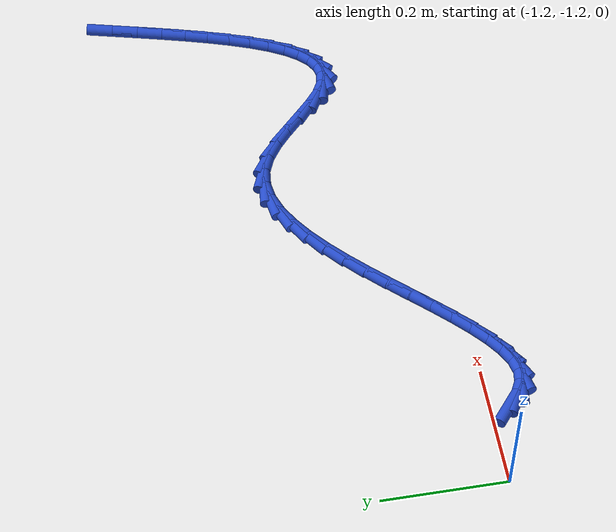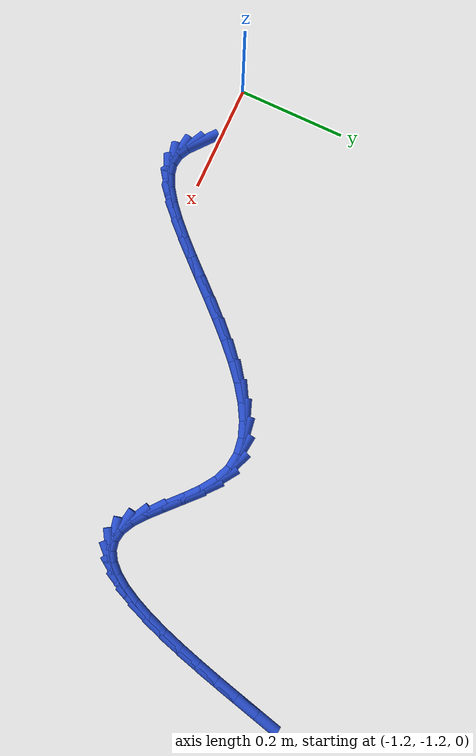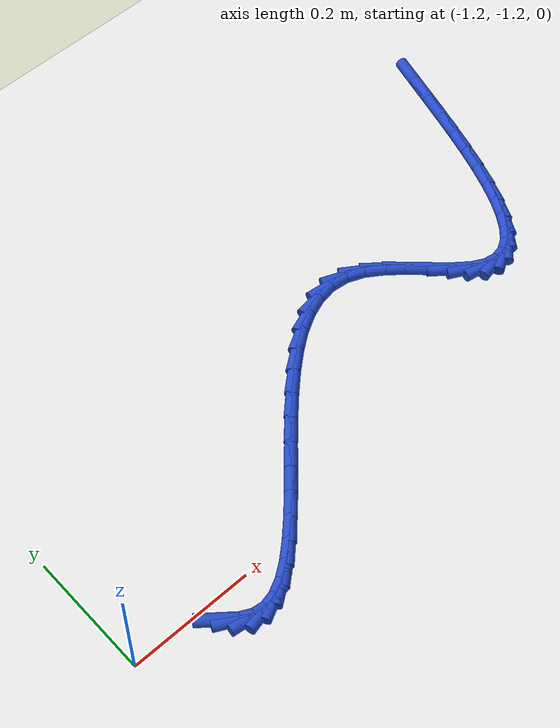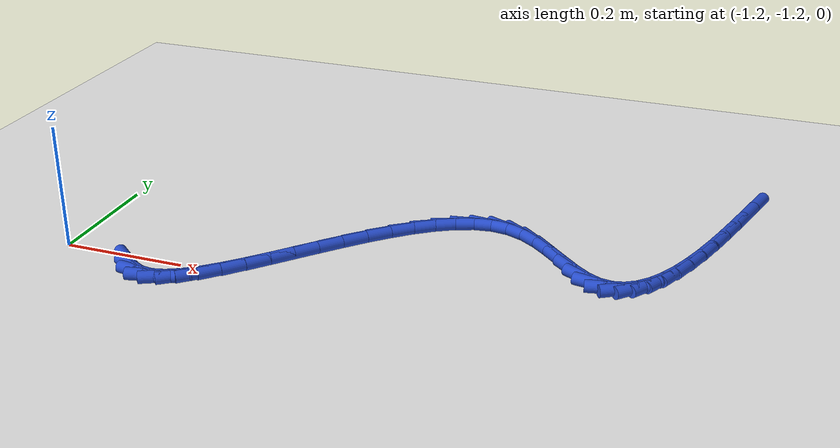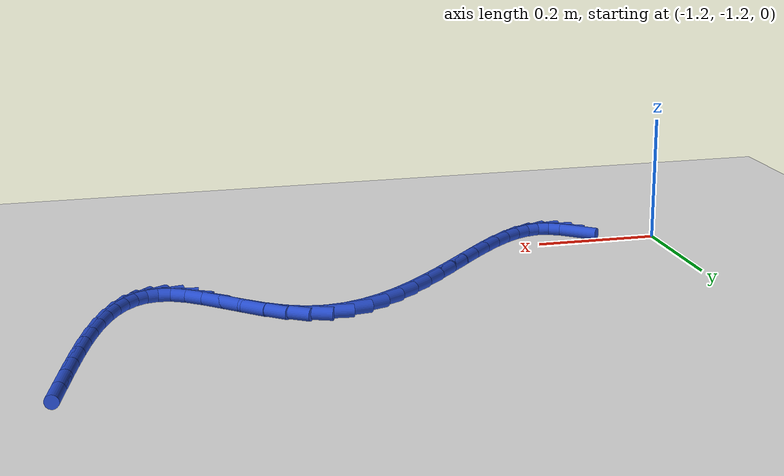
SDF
<sdf version="1.6">
 <world name="default">
  <model name="ground_plane">
   <static>1</static>
   <link name="link">
    <collision name="collision">
     <geometry><plane><normal>0 0 1</normal><size>100 100</size></plane></geometry>
     <surface><friction><ode><mu>100</mu><mu2>50</mu2></ode></friction></surface>
    </collision>
    <visual name="visual">
     <cast_shadows>0</cast_shadows>
     <geometry><plane><normal>0 0 1</normal><size>100 100</size></plane></geometry>
     <material>
      <script><uri>file://media/materials/scripts/gazebo.material</uri><name>Gazebo/WhiteGlow</name></script>
     </material>
    </visual>
   </link>
  </model>
  <model name="line">
   <link name="link_179">
    <pose>-1.0712496424174915 -1.2308870266779137 0.01 0 1.57 -0.6922812080934702</pose>
    <collision name="collision">
     <geometry><cylinder><radius>0.01</radius><length>0.08</length></cylinder></geometry>
    </collision>
    <visual name="visual">
     <material>
      <script><name>Gazebo/Blue</name><uri>file://media/materials/scripts/gazebo.material</uri></script>
     </material>
     <geometry><cylinder><radius>0.01</radius><length>0.08</length></cylinder></geometry>
    </visual>
   </link>
   <link name="link_180">
    <pose>-1.0529584683432565 -1.246053674354585 0.01 0 1.57 -0.47155529323171735</pose>
    <collision name="collision">
     <geometry><cylinder><radius>0.01</radius><length>0.08</length></cylinder></geometry>
    </collision>
    <visual name="visual">
     <material>
      <script><name>Gazebo/Blue</name><uri>file://media/materials/scripts/gazebo.material</uri></script>
     </material>
     <geometry><cylinder><radius>0.01</radius><length>0.08</length></cylinder></geometry>
    </visual>
   </link>
   <link name="link_181">
    <pose>-1.0343918881669434 -1.255521220117801 0.01 0 1.57 -0.13213396810318156</pose>
    <collision name="collision">
     <geometry><cylinder><radius>0.01</radius><length>0.08</length></cylinder></geometry>
    </collision>
    <visual name="visual">
     <material>
      <script><name>Gazebo/Blue</name><uri>file://media/materials/scripts/gazebo.material</uri></script>
     </material>
     <geometry><cylinder><radius>0.01</radius><length>0.08</length></cylinder></geometry>
    </visual>
   </link>
   <link name="link_182">
    <pose>-1.0148479642855506 -1.2581187711727826 0.01 0 1.57 0.2213241829103349</pose>
    <collision name="collision">
     <geometry><cylinder><radius>0.01</radius><length>0.08</length></cylinder></geometry>
    </collision>
    <visual name="visual">
     <material>
      <script><name>Gazebo/Blue</name><uri>file://media/materials/scripts/gazebo.material</uri></script>
     </material>
     <geometry><cylinder><radius>0.01</radius><length>0.08</length></cylinder></geometry>
    </visual>
   </link>
   <link name="link_183">
    <pose>-0.9939082696893847 -1.2534071255980728 0.01 0 1.57 0.4663655021589586</pose>
    <collision name="collision">
     <geometry><cylinder><radius>0.01</radius><length>0.08</length></cylinder></geometry>
    </collision>
    <visual name="visual">
     <material>
      <script><name>Gazebo/Blue</name><uri>file://media/materials/scripts/gazebo.material</uri></script>
     </material>
     <geometry><cylinder><radius>0.01</radius><length>0.08</length></cylinder></geometry>
    </visual>
   </link>
   <link name="link_184">
    <pose>-0.9716384818930729 -1.2421964699273094 0.01 0 1.57 0.6202769035921657</pose>
    <collision name="collision">
     <geometry><cylinder><radius>0.01</radius><length>0.08</length></cylinder></geometry>
    </collision>
    <visual name="visual">
     <material>
      <script><name>Gazebo/Blue</name><uri>file://media/materials/scripts/gazebo.material</uri></script>
     </material>
     <geometry><cylinder><radius>0.01</radius><length>0.08</length></cylinder></geometry>
    </visual>
   </link>
   <link name="link_185">
    <pose>-0.9481516181207548 -1.2254191661408826 0.01 0 1.57 0.7163957355869561</pose>
    <collision name="collision">
     <geometry><cylinder><radius>0.01</radius><length>0.08</length></cylinder></geometry>
    </collision>
    <visual name="visual">
     <material>
      <script><name>Gazebo/Blue</name><uri>file://media/materials/scripts/gazebo.material</uri></script>
     </material>
     <geometry><cylinder><radius>0.01</radius><length>0.08</length></cylinder></geometry>
    </visual>
   </link>
   <link name="link_186">
    <pose>-0.9235606955965721 -1.2040075762191857 0.01 0 1.57 0.7761579577569756</pose>
    <collision name="collision">
     <geometry><cylinder><radius>0.01</radius><length>0.08</length></cylinder></geometry>
    </collision>
    <visual name="visual">
     <material>
      <script><name>Gazebo/Blue</name><uri>file://media/materials/scripts/gazebo.material</uri></script>
     </material>
     <geometry><cylinder><radius>0.01</radius><length>0.08</length></cylinder></geometry>
    </visual>
   </link>
   <link name="link_187">
    <pose>-0.8979787315446642 -1.178894062142608 0.01 0 1.57 0.8115792913565798</pose>
    <collision name="collision">
     <geometry><cylinder><radius>0.01</radius><length>0.08</length></cylinder></geometry>
    </collision>
    <visual name="visual">
     <material>
      <script><name>Gazebo/Blue</name><uri>file://media/materials/scripts/gazebo.material</uri></script>
     </material>
     <geometry><cylinder><radius>0.01</radius><length>0.08</length></cylinder></geometry>
    </visual>
   </link>
   <link name="link_188">
    <pose>-0.8715187431891718 -1.1510109858915414 0.01 0 1.57 0.8291890823489896</pose>
    <collision name="collision">
     <geometry><cylinder><radius>0.01</radius><length>0.08</length></cylinder></geometry>
    </collision>
    <visual name="visual">
     <material>
      <script><name>Gazebo/Blue</name><uri>file://media/materials/scripts/gazebo.material</uri></script>
     </material>
     <geometry><cylinder><radius>0.01</radius><length>0.08</length></cylinder></geometry>
    </visual>
   </link>
   <link name="link_189">
    <pose>-0.8442937477542353 -1.1212907094463767 0.01 0 1.57 0.832338541023532</pose>
    <collision name="collision">
     <geometry><cylinder><radius>0.01</radius><length>0.08</length></cylinder></geometry>
    </collision>
    <visual name="visual">
     <material>
      <script><name>Gazebo/Blue</name><uri>file://media/materials/scripts/gazebo.material</uri></script>
     </material>
     <geometry><cylinder><radius>0.01</radius><length>0.08</length></cylinder></geometry>
    </visual>
   </link>
   <link name="link_190">
    <pose>-0.8164167624639947 -1.0906655947875048 0.01 0 1.57 0.8223496767348666</pose>
    <collision name="collision">
     <geometry><cylinder><radius>0.01</radius><length>0.08</length></cylinder></geometry>
    </collision>
    <visual name="visual">
     <material>
      <script><name>Gazebo/Blue</name><uri>file://media/materials/scripts/gazebo.material</uri></script>
     </material>
     <geometry><cylinder><radius>0.01</radius><length>0.08</length></cylinder></geometry>
    </visual>
   </link>
   <link name="link_191">
    <pose>-0.7880008045425902 -1.0600680038953165 0.01 0 1.57 0.7990053435024614</pose>
    <collision name="collision">
     <geometry><cylinder><radius>0.01</radius><length>0.08</length></cylinder></geometry>
    </collision>
    <visual name="visual">
     <material>
      <script><name>Gazebo/Blue</name><uri>file://media/materials/scripts/gazebo.material</uri></script>
     </material>
     <geometry><cylinder><radius>0.01</radius><length>0.08</length></cylinder></geometry>
    </visual>
   </link>
   <link name="link_192">
    <pose>-0.7591588912141622 -1.0304302987502028 0.01 0 1.57 0.7606336939039765</pose>
    <collision name="collision">
     <geometry><cylinder><radius>0.01</radius><length>0.08</length></cylinder></geometry>
    </collision>
    <visual name="visual">
     <material>
      <script><name>Gazebo/Blue</name><uri>file://media/materials/scripts/gazebo.material</uri></script>
     </material>
     <geometry><cylinder><radius>0.01</radius><length>0.08</length></cylinder></geometry>
    </visual>
   </link>
   <link name="link_193">
    <pose>-0.7300040397028515 -1.0026848413325558 0.01 0 1.57 0.7038864186282696</pose>
    <collision name="collision">
     <geometry><cylinder><radius>0.01</radius><length>0.08</length></cylinder></geometry>
    </collision>
    <visual name="visual">
     <material>
      <script><name>Gazebo/Blue</name><uri>file://media/materials/scripts/gazebo.material</uri></script>
     </material>
     <geometry><cylinder><radius>0.01</radius><length>0.08</length></cylinder></geometry>
    </visual>
   </link>
   <link name="link_194">
    <pose>-0.700649267232799 -0.9777639936227662 0.01 0 1.57 0.623259152045787</pose>
    <collision name="collision">
     <geometry><cylinder><radius>0.01</radius><length>0.08</length></cylinder></geometry>
    </collision>
    <visual name="visual">
     <material>
      <script><name>Gazebo/Blue</name><uri>file://media/materials/scripts/gazebo.material</uri></script>
     </material>
     <geometry><cylinder><radius>0.01</radius><length>0.08</length></cylinder></geometry>
    </visual>
   </link>
   <link name="link_195">
    <pose>-0.6712075910281434 -0.9566001176012242 0.01 0 1.57 0.5105356089420913</pose>
    <collision name="collision">
     <geometry><cylinder><radius>0.01</radius><length>0.08</length></cylinder></geometry>
    </collision>
    <visual name="visual">
     <material>
      <script><name>Gazebo/Blue</name><uri>file://media/materials/scripts/gazebo.material</uri></script>
     </material>
     <geometry><cylinder><radius>0.01</radius><length>0.08</length></cylinder></geometry>
    </visual>
   </link>
   <link name="link_196">
    <pose>-0.6417920283130263 -0.9401255752483217 0.01 0 1.57 0.3549976912553543</pose>
    <collision name="collision">
     <geometry><cylinder><radius>0.01</radius><length>0.08</length></cylinder></geometry>
    </collision>
    <visual name="visual">
     <material>
      <script><name>Gazebo/Blue</name><uri>file://media/materials/scripts/gazebo.material</uri></script>
     </material>
     <geometry><cylinder><radius>0.01</radius><length>0.08</length></cylinder></geometry>
    </visual>
   </link>
   <link name="link_197">
    <pose>-0.6125155963115877 -0.9292727285444498 0.01 0 1.57 0.1470411059490394</pose>
    <collision name="collision">
     <geometry><cylinder><radius>0.01</radius><length>0.08</length></cylinder></geometry>
    </collision>
    <visual name="visual">
     <material>
      <script><name>Gazebo/Blue</name><uri>file://media/materials/scripts/gazebo.material</uri></script>
     </material>
     <geometry><cylinder><radius>0.01</radius><length>0.08</length></cylinder></geometry>
    </visual>
   </link>
   <link name="link_198">
    <pose>-0.5834913122479677 -0.9249739394699985 0.01 0 1.57 -0.11077041032198362</pose>
    <collision name="collision">
     <geometry><cylinder><radius>0.01</radius><length>0.08</length></cylinder></geometry>
    </collision>
    <visual name="visual">
     <material>
      <script><name>Gazebo/Blue</name><uri>file://media/materials/scripts/gazebo.material</uri></script>
     </material>
     <geometry><cylinder><radius>0.01</radius><length>0.08</length></cylinder></geometry>
    </visual>
   </link>
   <link name="link_199">
    <pose>-0.5548321933463067 -0.9281615700053599 0.01 0 1.57 -0.38733299385342346</pose>
    <collision name="collision">
     <geometry><cylinder><radius>0.01</radius><length>0.08</length></cylinder></geometry>
    </collision>
    <visual name="visual">
     <material>
      <script><name>Gazebo/Blue</name><uri>file://media/materials/scripts/gazebo.material</uri></script>
     </material>
     <geometry><cylinder><radius>0.01</radius><length>0.08</length></cylinder></geometry>
    </visual>
   </link>
   <link name="link_200">
    <pose>-0.5266533403735673 -0.9396568705041746 0.01 0 1.57 -0.5951852601669205</pose>
    <collision name="collision">
     <geometry><cylinder><radius>0.01</radius><length>0.08</length></cylinder></geometry>
    </collision>
    <visual name="visual">
     <material>
      <script><name>Gazebo/Blue</name><uri>file://media/materials/scripts/gazebo.material</uri></script>
     </material>
     <geometry><cylinder><radius>0.01</radius><length>0.08</length></cylinder></geometry>
    </visual>
   </link>
   <link name="link_201">
    <pose>-0.49910684610303996 -0.9583083735268668 0.01 0 1.57 -0.7097005970437553</pose>
    <collision name="collision">
     <geometry><cylinder><radius>0.01</radius><length>0.08</length></cylinder></geometry>
    </collision>
    <visual name="visual">
     <material>
      <script><name>Gazebo/Blue</name><uri>file://media/materials/scripts/gazebo.material</uri></script>
     </material>
     <geometry><cylinder><radius>0.01</radius><length>0.08</length></cylinder></geometry>
    </visual>
   </link>
   <link name="link_202">
    <pose>-0.47237658240053393 -0.9812698892466057 0.01 0 1.57 -0.7582807236363939</pose>
    <collision name="collision">
     <geometry><cylinder><radius>0.01</radius><length>0.08</length></cylinder></geometry>
    </collision>
    <visual name="visual">
     <material>
      <script><name>Gazebo/Blue</name><uri>file://media/materials/scripts/gazebo.material</uri></script>
     </material>
     <geometry><cylinder><radius>0.01</radius><length>0.08</length></cylinder></geometry>
    </visual>
   </link>
   <link name="link_203">
    <pose>-0.44664745454572063 -1.0056401177164893 0.01 0 1.57 -0.7502919708428869</pose>
    <collision name="collision">
     <geometry><cylinder><radius>0.01</radius><length>0.08</length></cylinder></geometry>
    </collision>
    <visual name="visual">
     <material>
      <script><name>Gazebo/Blue</name><uri>file://media/materials/scripts/gazebo.material</uri></script>
     </material>
     <geometry><cylinder><radius>0.01</radius><length>0.08</length></cylinder></geometry>
    </visual>
   </link>
   <link name="link_204">
    <pose>-0.42210436781827043 -1.0285177589896135 0.01 0 1.57 -0.6733194641454041</pose>
    <collision name="collision">
     <geometry><cylinder><radius>0.01</radius><length>0.08</length></cylinder></geometry>
    </collision>
    <visual name="visual">
     <material>
      <script><name>Gazebo/Blue</name><uri>file://media/materials/scripts/gazebo.material</uri></script>
     </material>
     <geometry><cylinder><radius>0.01</radius><length>0.08</length></cylinder></geometry>
    </visual>
   </link>
   <link name="link_205">
    <pose>-0.3989322274978545 -1.0470015131190769 0.01 0 1.57 -0.48329807569487815</pose>
    <collision name="collision">
     <geometry><cylinder><radius>0.01</radius><length>0.08</length></cylinder></geometry>
    </collision>
    <visual name="visual">
     <material>
      <script><name>Gazebo/Blue</name><uri>file://media/materials/scripts/gazebo.material</uri></script>
     </material>
     <geometry><cylinder><radius>0.01</radius><length>0.08</length></cylinder></geometry>
    </visual>
   </link>
   <link name="link_206">
    <pose>-0.37730169017531473 -1.0583534363043323 0.01 0 1.57 -0.17117709100894876</pose>
    <collision name="collision">
     <geometry><cylinder><radius>0.01</radius><length>0.08</length></cylinder></geometry>
    </collision>
    <visual name="visual">
     <material>
      <script><name>Gazebo/Blue</name><uri>file://media/materials/scripts/gazebo.material</uri></script>
     </material>
     <geometry><cylinder><radius>0.01</radius><length>0.08</length></cylinder></geometry>
    </visual>
   </link>
   <link name="link_207">
    <pose>-0.35720973725417937 -1.0618267089568931 0.01 0 1.57 0.20192262180647538</pose>
    <collision name="collision">
     <geometry><cylinder><radius>0.01</radius><length>0.08</length></cylinder></geometry>
    </collision>
    <visual name="visual">
     <material>
      <script><name>Gazebo/Blue</name><uri>file://media/materials/scripts/gazebo.material</uri></script>
     </material>
     <geometry><cylinder><radius>0.01</radius><length>0.08</length></cylinder></geometry>
    </visual>
   </link>
   <link name="link_208">
    <pose>-0.3385373648120262 -1.0580042419714508 0.01 0 1.57 0.5440792991615815</pose>
    <collision name="collision">
     <geometry><cylinder><radius>0.01</radius><length>0.08</length></cylinder></geometry>
    </collision>
    <visual name="visual">
     <material>
      <script><name>Gazebo/Blue</name><uri>file://media/materials/scripts/gazebo.material</uri></script>
     </material>
     <geometry><cylinder><radius>0.01</radius><length>0.08</length></cylinder></geometry>
    </visual>
   </link>
   <link name="link_209">
    <pose>-0.3211634510139615 -1.0474932273554403 0.01 0 1.57 0.7974685121603254</pose>
    <collision name="collision">
     <geometry><cylinder><radius>0.01</radius><length>0.08</length></cylinder></geometry>
    </collision>
    <visual name="visual">
     <material>
      <script><name>Gazebo/Blue</name><uri>file://media/materials/scripts/gazebo.material</uri></script>
     </material>
     <geometry><cylinder><radius>0.01</radius><length>0.08</length></cylinder></geometry>
    </visual>
   </link>
   <link name="link_210">
    <pose>-0.3049668740250901 -1.030900857116295 0.01 0 1.57 0.9694444542059656</pose>
    <collision name="collision">
     <geometry><cylinder><radius>0.01</radius><length>0.08</length></cylinder></geometry>
    </collision>
    <visual name="visual">
     <material>
      <script><name>Gazebo/Blue</name><uri>file://media/materials/scripts/gazebo.material</uri></script>
     </material>
     <geometry><cylinder><radius>0.01</radius><length>0.08</length></cylinder></geometry>
    </visual>
   </link>
   <link name="link_211">
    <pose>-0.28982651201051735 -1.0088343232614496 0.01 0 1.57 1.0854541225810894</pose>
    <collision name="collision">
     <geometry><cylinder><radius>0.01</radius><length>0.08</length></cylinder></geometry>
    </collision>
    <visual name="visual">
     <material>
      <script><name>Gazebo/Blue</name><uri>file://media/materials/scripts/gazebo.material</uri></script>
     </material>
     <geometry><cylinder><radius>0.01</radius><length>0.08</length></cylinder></geometry>
    </visual>
   </link>
   <link name="link_212">
    <pose>-0.27562124313534864 -0.9819008177983383 0.01 0 1.57 1.165288636362338</pose>
    <collision name="collision">
     <geometry><cylinder><radius>0.01</radius><length>0.08</length></cylinder></geometry>
    </collision>
    <visual name="visual">
     <material>
      <script><name>Gazebo/Blue</name><uri>file://media/materials/scripts/gazebo.material</uri></script>
     </material>
     <geometry><cylinder><radius>0.01</radius><length>0.08</length></cylinder></geometry>
    </visual>
   </link>
   <link name="link_213">
    <pose>-0.2622299455646894 -0.9507075327343951 0.01 0 1.57 1.2213355292831527</pose>
    <collision name="collision">
     <geometry><cylinder><radius>0.01</radius><length>0.08</length></cylinder></geometry>
    </collision>
    <visual name="visual">
     <material>
      <script><name>Gazebo/Blue</name><uri>file://media/materials/scripts/gazebo.material</uri></script>
     </material>
     <geometry><cylinder><radius>0.01</radius><length>0.08</length></cylinder></geometry>
    </visual>
   </link>
   <link name="link_214">
    <pose>-0.2495314974636448 -0.9158616600770539 0.01 0 1.57 1.2610571226757652</pose>
    <collision name="collision">
     <geometry><cylinder><radius>0.01</radius><length>0.08</length></cylinder></geometry>
    </collision>
    <visual name="visual">
     <material>
      <script><name>Gazebo/Blue</name><uri>file://media/materials/scripts/gazebo.material</uri></script>
     </material>
     <geometry><cylinder><radius>0.01</radius><length>0.08</length></cylinder></geometry>
    </visual>
   </link>
   <link name="link_215">
    <pose>-0.23740477699732 -0.8779703918337484 0.01 0 1.57 1.2889834185560445</pose>
    <collision name="collision">
     <geometry><cylinder><radius>0.01</radius><length>0.08</length></cylinder></geometry>
    </collision>
    <visual name="visual">
     <material>
      <script><name>Gazebo/Blue</name><uri>file://media/materials/scripts/gazebo.material</uri></script>
     </material>
     <geometry><cylinder><radius>0.01</radius><length>0.08</length></cylinder></geometry>
    </visual>
   </link>
   <link name="link_216">
    <pose>-0.22572866233082095 -0.8376409200119147 0.01 0 1.57 1.3078960027402096</pose>
    <collision name="collision">
     <geometry><cylinder><radius>0.01</radius><length>0.08</length></cylinder></geometry>
    </collision>
    <visual name="visual">
     <material>
      <script><name>Gazebo/Blue</name><uri>file://media/materials/scripts/gazebo.material</uri></script>
     </material>
     <geometry><cylinder><radius>0.01</radius><length>0.08</length></cylinder></geometry>
    </visual>
   </link>
   <link name="link_217">
    <pose>-0.21438203162925262 -0.7954804366189855 0.01 0 1.57 1.3194889635995173</pose>
    <collision name="collision">
     <geometry><cylinder><radius>0.01</radius><length>0.08</length></cylinder></geometry>
    </collision>
    <visual name="visual">
     <material>
      <script><name>Gazebo/Blue</name><uri>file://media/materials/scripts/gazebo.material</uri></script>
     </material>
     <geometry><cylinder><radius>0.01</radius><length>0.08</length></cylinder></geometry>
    </visual>
   </link>
   <link name="link_218">
    <pose>-0.20324376305772052 -0.7520961336623956 0.01 0 1.57 1.3247314441922897</pose>
    <collision name="collision">
     <geometry><cylinder><radius>0.01</radius><length>0.08</length></cylinder></geometry>
    </collision>
    <visual name="visual">
     <material>
      <script><name>Gazebo/Blue</name><uri>file://media/materials/scripts/gazebo.material</uri></script>
     </material>
     <geometry><cylinder><radius>0.01</radius><length>0.08</length></cylinder></geometry>
    </visual>
   </link>
   <link name="link_219">
    <pose>-0.1921927347813298 -0.7080952031495787 0.01 0 1.57 1.3240580353699194</pose>
    <collision name="collision">
     <geometry><cylinder><radius>0.01</radius><length>0.08</length></cylinder></geometry>
    </collision>
    <visual name="visual">
     <material>
      <script><name>Gazebo/Blue</name><uri>file://media/materials/scripts/gazebo.material</uri></script>
     </material>
     <geometry><cylinder><radius>0.01</radius><length>0.08</length></cylinder></geometry>
    </visual>
   </link>
  </model>
 </world>
</sdf>
